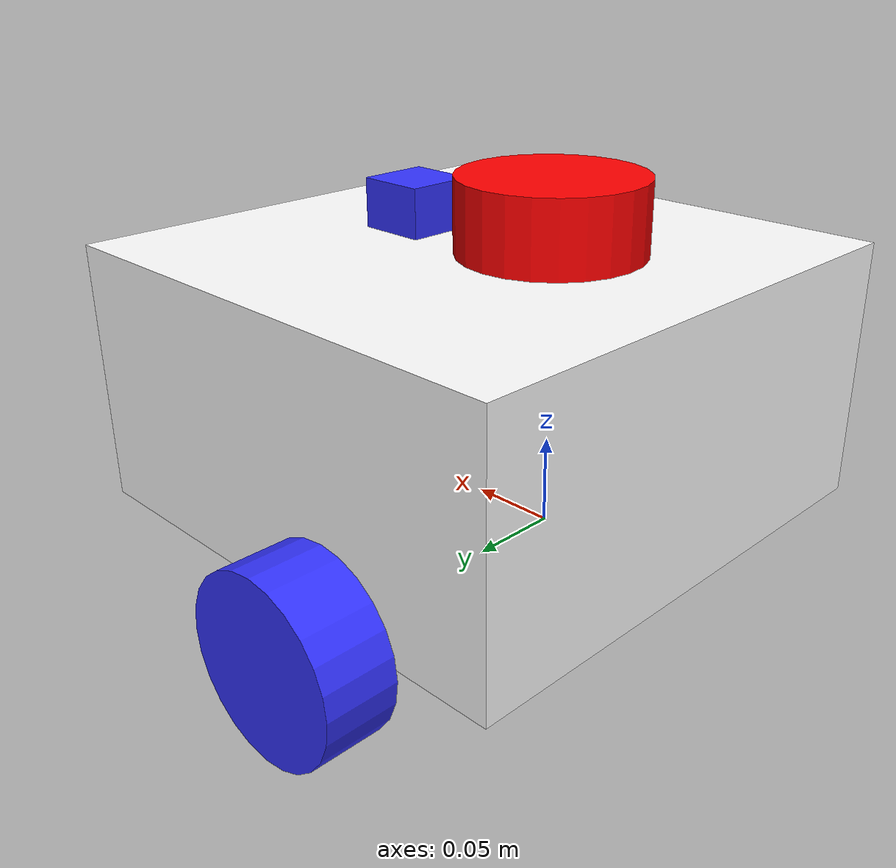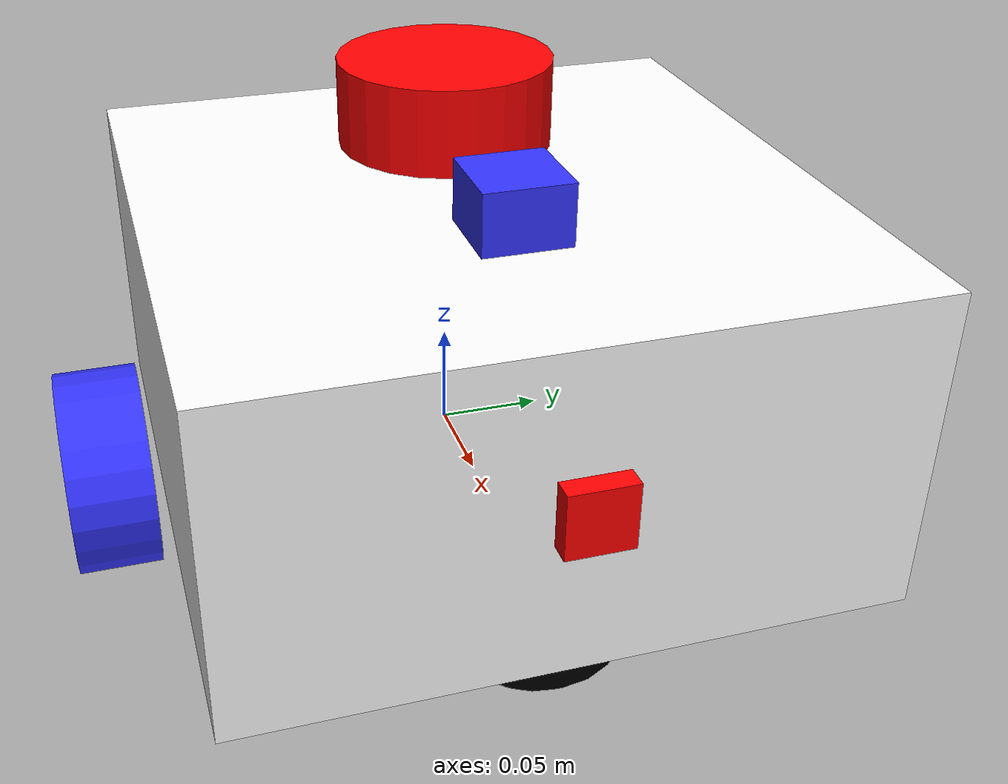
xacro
<?xml version="1.0"?>
<robot xmlns:xacro="http://www.ros.org/wiki/xacro" name="robot">

    <xacro:include filename="robot_core.xacro" />

    <xacro:include filename="ros2_control.xacro" />
    <xacro:include filename="lidar.xacro" />
    <xacro:include filename="imu.xacro" />
    <xacro:include filename="depth_camera.xacro" />

</robot>

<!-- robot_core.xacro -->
<robot xmlns:xacro="http://www.ros.org/wiki/xacro" name="robot">

    <xacro:include filename="inertial_macros.xacro" />

    <material name="white">
        <color rgba="1 1 1 1" />
    </material>

    <material name="organe">
        <color rgba="1 0.3 1 1" />
    </material>

    <material name="blue">
        <color rgba="0.2 0.2 1 1" />
    </material>

    <material name="black">
        <color rgba="0 0 0 1" />
    </material>

    <material name="red">
        <color rgba="1 0 0 1" />
    </material>

    <!-- BASE LINK -->
    <link name="base_link">

    </link>

     <!-- BASE_FOOTPRINT LINK -->
    <joint name="base_footprint_joint" type="fixed">
        <parent link="base_link" />
        <child link="base_footprint" />
        <origin xyz="0 0 0" rpy="0 0 0" />
    </joint>

    <link name="base_footprint">
    </link>

    <!-- CHASSIS LINK -->
    <joint name="chassis_joint" type="fixed">
        <parent link="base_link" />
        <child link="chassis" />
        <origin xyz="-0.1 0 0" />
    </joint>

    <link name="chassis">
        <visual>
            <origin xyz="0.15 0 0.075" />
            <geometry>
                <box size="0.3 0.3 0.15" />
            </geometry>
            <material name="white" />
        </visual>
        <collision>
            <origin xyz="0.15 0 0.075" />
            <geometry>
                <box size="0.3 0.3 0.15" />
            </geometry>
        </collision>
        <xacro:inertial_box mass="0.5" x="0.3" y="0.3" z="0.15">
            <origin xyz="0.15 0 0.075" rpy="0 0 0" />
        </xacro:inertial_box>
    </link>

    <gazebo reference='chassis'>
        <material>Gazebo/White</material>
    </gazebo>

    <!-- LEFT WHEEL LINK -->
    <joint name="left_wheel_joint" type="continuous">
        <parent link="base_link" />
        <child link="left_wheel" />
        <origin xyz="0 0.175 0" rpy="-${pi/2} 0 0" />
        <axis xyz="0 0 1" />
    </joint>

    <link name="left_wheel">
        <visual>
            <geometry>
                <cylinder radius="0.05" length="0.04" />
            </geometry>
            <material name="blue" />
        </visual>
        <collision>
            <geometry>
                <cylinder radius="0.05" length="0.04" />
            </geometry>
        </collision>
        <xacro:inertial_cylinder mass="0.1" length="0.04" radius="0.05">
            <origin xyz="0 0 0" rpy="0 0 0" />
        </xacro:inertial_cylinder>
    </link>

    <gazebo reference='left_wheel'>
        <material>Gazebo/Blue</material>
    </gazebo>

    <!-- RIGHT WHEEL LINK -->
    <joint name="right_wheel_joint" type="continuous">
        <parent link="base_link" />
        <child link="right_wheel" />
        <origin xyz="0 -0.175 0" rpy="${pi/2} 0 0" />
        <axis xyz="0 0 -1" />
    </joint>

    <link name="right_wheel">
        <visual>
            <geometry>
                <cylinder radius="0.05" length="0.04" />
            </geometry>
            <material name="blue" />
        </visual>
        <collision>
            <geometry>
                <cylinder radius="0.05" length="0.04" />
            </geometry>
        </collision>
        <xacro:inertial_cylinder mass="0.1" length="0.04" radius="0.05">
            <origin xyz="0 0 0" rpy="0 0 0" />
        </xacro:inertial_cylinder>
    </link>

    <gazebo reference='right_wheel'>
        <material>Gazebo/Blue</material>
    </gazebo>

    <!-- CASTER WHEEL LINK -->
    <joint name="caster_wheel_joint" type="fixed">
        <parent link="chassis" />
        <child link="caster_wheel" />
        <origin xyz="0.24 0 0" />
    </joint>

    <link name="caster_wheel">
        <visual>
            <geometry>
                <sphere radius="0.05" />
            </geometry>
            <material name="black" />
        </visual>
        <collision>
            <geometry>
                <sphere radius="0.05" />
            </geometry>
        </collision>
        <xacro:inertial_sphere mass="0.1" radius="0.05">
            <origin xyz="0 0 0" rpy="0 0 0" />
        </xacro:inertial_sphere>
    </link>

    <gazebo reference='caster_wheel'>
        <material>Gazebo/Black</material>
        <mu1 value="0.0001"/>
        <mu2 value="0.0001"/>
    </gazebo>

</robot>

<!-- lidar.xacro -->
<robot xmlns:xacro="http://www.ros.org/wiki/xacro">

    <joint name="laser_joint" type="fixed">
        <parent link="chassis" />
        <child link="laser_frame" />
        <origin xyz="0.1 0 0.175" rpy="0 0 0" />
    </joint>

    <link name="laser_frame">
        <visual>
            <geometry>
                <cylinder radius="0.05" length="0.04" />
            </geometry>
            <material name="red" />
        </visual>
        <collision>
            <geometry>
                <cylinder radius="0.05" length="0.04" />
            </geometry>
        </collision>
        <xacro:inertial_cylinder mass="0.1" length="0.04" radius="0.05">
            <origin xyz="0 0 0" rpy="0 0 0" />
        </xacro:inertial_cylinder>
    </link>

    <gazebo reference="laser_frame">
        <material>Gazebo/Red</material>
        <sensor name="laser" type="ray">
            <pose> 0 0 0 0 0 0 </pose>
            <visualize>true</visualize>
            <update_rate>15</update_rate>
            <ray>
                <scan>
                    <horizontal>
                        <samples>360</samples>
                        <resolution>1</resolution>
                        <min_angle>-1.92</min_angle>
                        <max_angle>1.92</max_angle>
                    </horizontal>
                </scan>
                <range>
                    <min>0.3</min>
                    <max>8</max>
                    <resolution>0.01</resolution>
                </range>
            </ray>
            <noise>
              <type>gaussian</type>
              <mean>0.0</mean>
              <stddev>0.01</stddev>
            </noise>
            <plugin name="laser_controller" filename="libgazebo_ros_ray_sensor.so">
                <ros>
                    <argument>~/out:=scan</argument>
                </ros>
                <output_type>sensor_msgs/LaserScan</output_type>
                <frame_name>laser_frame</frame_name>
            </plugin>
        </sensor>
    </gazebo>
</robot>

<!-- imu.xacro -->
<robot xmlns:xacro="http://www.ros.org/wiki/xacro">
    <joint name="imu_joint" type="fixed">
        <parent link="chassis" />
        <child link="imu_link" />
        <origin xyz="0.2 0 0.153" rpy="0 0 0" />
    </joint>

    <link name="imu_link">
        <visual>
            <geometry>
                <box size="0.04 0.04 0.05" />
            </geometry>
            <material name="blue" />
        </visual>
        <collision>
            <geometry>
                <box size="0.04 0.04 0.05" />
            </geometry>
        </collision>
        <xacro:inertial_box mass="0.05" x="0.04" y="0.04" z="0.05">
            <origin xyz="0 0 0" rpy="0 0 0" />
        </xacro:inertial_box>
    </link >

    <gazebo reference="imu_link">
        <material>Gazebo/Blue</material>
        <gravity>true</gravity>
        <sensor name="imu_sensor" type="imu">
            <plugin filename="libgazebo_ros_imu_sensor.so" name="imu_plugin">
                <ros>
                    <namespace>/demo</namespace>
                    <remapping>~/out:=imu/data</remapping>
                </ros>
                <initial_orientation_as_reference>false</initial_orientation_as_reference>
            </plugin>
            <noise>
                <type>gaussian</type>
                <rate>
                    <mean>0.0</mean>
                    <stddev>0.001</stddev>  <!-- Giảm nhiễu -->
                </rate>
            </noise>
            <always_on>true</always_on>
            <update_rate>100</update_rate>
            <visualize>true</visualize>
            <imu>
                <angular_velocity>
                    <x>
                        <noise type="gaussian">
                            <mean>0.0</mean>
                            <stddev>5e-5</stddev>
                            <bias_mean>0.0000075</bias_mean>
                            <bias_stddev>0.0000008</bias_stddev>
                        </noise>
                    </x>
                    <y>
                        <noise type="gaussian">
                            <mean>0.0</mean>
                            <stddev>5e-5</stddev>
                            <bias_mean>0.0000075</bias_mean>
                            <bias_stddev>0.0000008</bias_stddev>
                        </noise>
                    </y>
                    <z>
                        <noise type="gaussian">
                            <mean>0.0</mean>
                            <stddev>5e-5</stddev>
                            <bias_mean>0.0000075</bias_mean>
                            <bias_stddev>0.0000008</bias_stddev>
                        </noise>
                    </z>
                </angular_velocity>

                <linear_acceleration>
                    <x>
                       <noise type="gaussian">
                           <mean>0.0</mean>
                           <stddev>1e-2</stddev>
                           <bias_mean>0.1</bias_mean>
                           <bias_stddev>0.001</bias_stddev>
                       </noise>
                   </x>
                   <y>
                       <noise type="gaussian">
                           <mean>0.0</mean>
                           <stddev>1e-2</stddev>
                           <bias_mean>0.1</bias_mean>
                           <bias_stddev>0.001</bias_stddev>
                       </noise>
                   </y>
                   <z>
                       <noise type="gaussian">
                           <mean>0.0</mean>
                           <stddev>1e-2</stddev>
                           <bias_mean>0.1</bias_mean>
                           <bias_stddev>0.001</bias_stddev>
                       </noise>
                   </z>
                </linear_acceleration>
            </imu>
        </sensor>
    </gazebo>
</robot>

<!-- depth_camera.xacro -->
<robot xmlns:xacro="http://www.ros.org/wiki/xacro">

    <!-- Mount camera_link on chassis -->
    <joint name="camera_joint" type="fixed">
        <parent link="chassis" />
        <child link="camera_link" />
        <!-- adjust xyz/rpy to actual mount position -->
        <origin xyz="0.305 0 0.08" rpy="0 0 0" />
    </joint>

    <link name="camera_link">
        <visual>
            <geometry>
                <box size="0.01 0.03 0.03" />
            </geometry>
            <material name="red" />
        </visual>
    </link>

    <!-- Optical frame for camera driver -->
    <joint name="camera_optical_joint" type="fixed">
        <parent link="camera_link" />
        <child link="camera_link_optical" />
        <!-- rotate X by -90, Z by -90 to match ROS optical frame-->
        <origin xyz="0 0 0" rpy="${-pi/2} 0 ${-pi/2}" />
    </joint>

    <link name="camera_link_optical"></link>

    <!-- Gazebo depth+RGB sensor plugin with registration-->
    <gazebo reference="camera_link">
        <material>Gazebo/Red</material>
        <sensor name="camera" type="depth">
            <pose> 0 0 0 0 0 0 </pose>
            <visualize>true</visualize>
            <update_rate>30</update_rate>
            <camera>
                <horizontal>1.089</horizontal>
                <image>
                    <format>B8G8R8</format>
                    <width>640</width>
                    <height>480</height>
                </image>
                <clip>
                    <near>0.05</near>
                    <far>5.0</far>
                </clip>
            </camera>
            <noise>
                <type>gaussian</type>
                <mean>0.0</mean>
                <stddev>0.01</stddev>
            </noise>
            <plugin name="camera_controller" filename="libgazebo_ros_camera.so">
                <ros>
                    <namespace>/</namespace>
                    <remapping>image:=image_raw</remapping>
                    <remapping>depth/image:=depth/image_raw</remapping>
                    <remapping>depth/camera_info:=depth/camera_info</remapping>
                    <remapping>points:=points</remapping>
                </ros>
                <frame_name>camera_link_optical</frame_name>
                <min_depth>0.2</min_depth>
                <max_depth>5.0</max_depth>
            </plugin>
        </sensor>
    </gazebo>
</robot>
